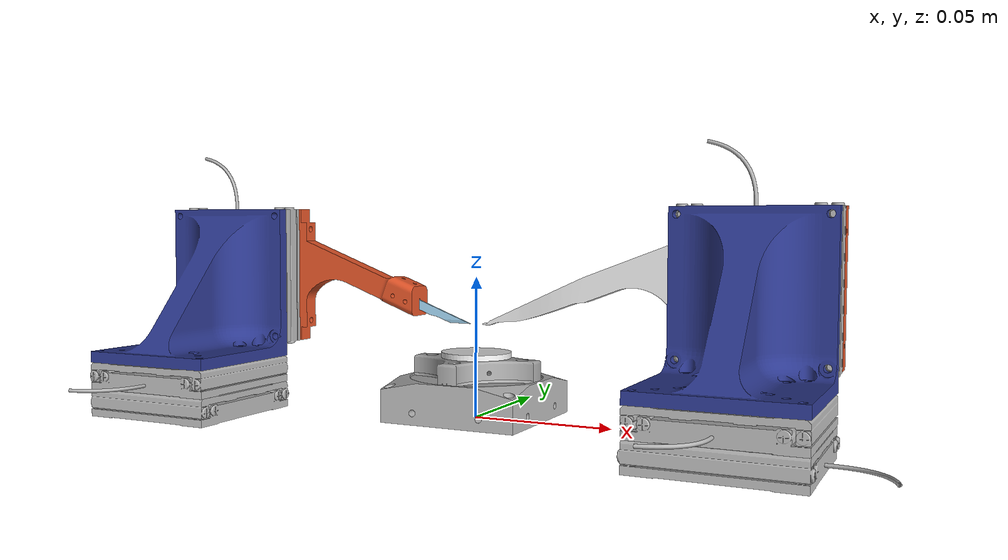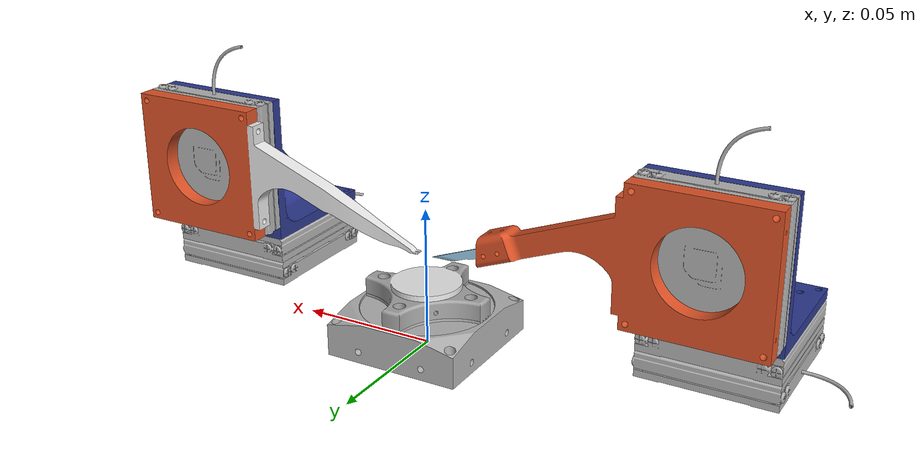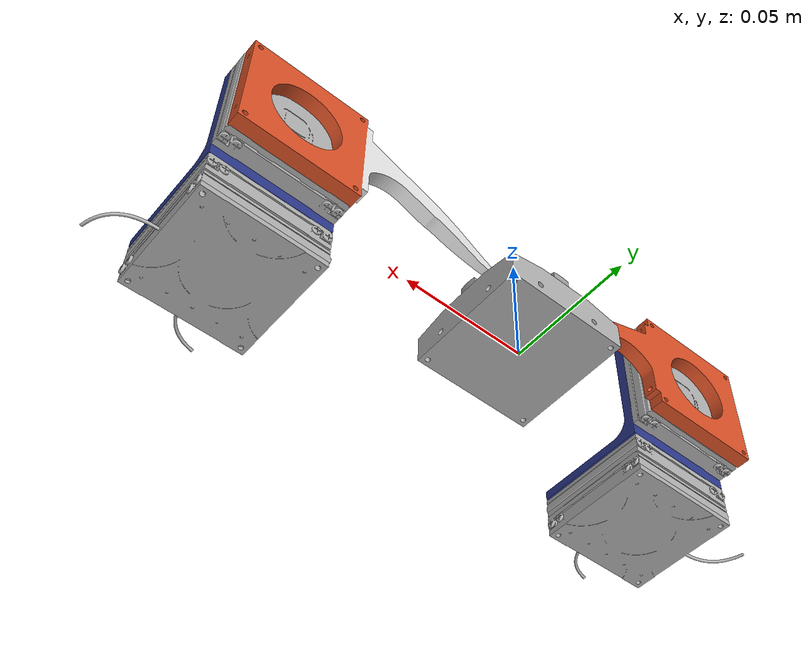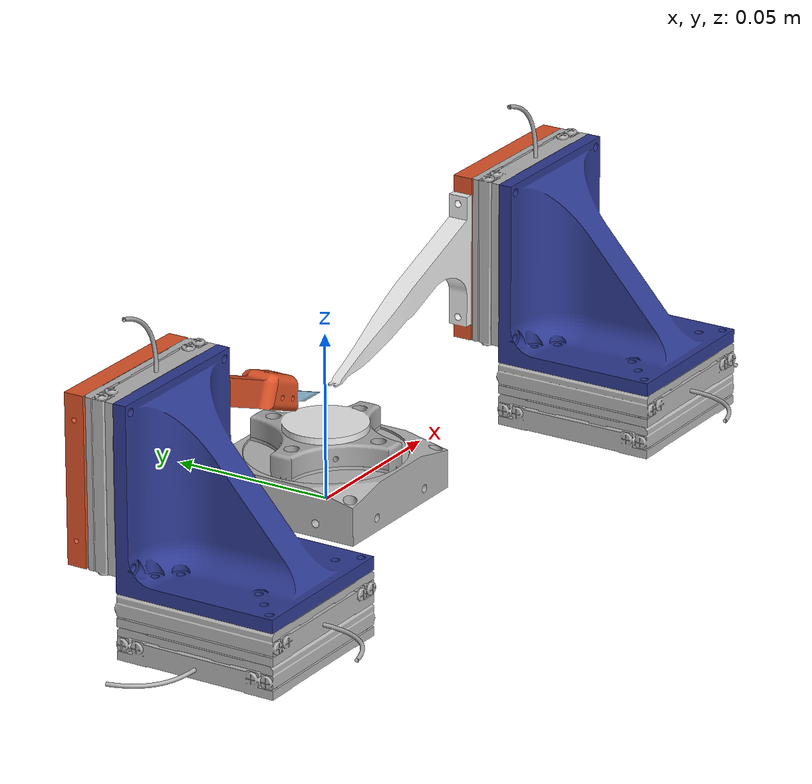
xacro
<?xml version="1.0"?>
<robot xmlns:xacro="http://www.ros.org/wiki/xacro" name="micro_resector">

    <xacro:arg name="hardware_interface" default="PositionJointInterface"/>
    <xacro:arg name="prefix" default="x"/>
    <xacro:arg name="virtual_joints" default="false"/>
    <xacro:arg name="camera" default="false"/>
    <xacro:arg name="hardware" default="false"/>

    <link name="base_link"/>

    <xacro:include filename="$(find micro_resector_description)/urdf/materials.xacro" />
    <xacro:include filename="$(find micro_resector_description)/urdf/tweezer_system.xacro" />
    <xacro:include filename="$(find micro_resector_description)/urdf/scalpel_system.xacro"/>
    <xacro:include filename="$(find micro_resector_description)/urdf/sample_holder_system.xacro"/>
    <xacro:include filename="$(find micro_resector_description)/urdf/tools/microscope_camera.xacro"/>
    <xacro:include filename="$(find micro_resector_description)/urdf/micro_resector.ros2_control.xacro"/>

    <xacro:if value="$(arg virtual_joints)">
        <joint name="tweezer_to_base" type="floating">
            <parent link="base_link"/>
            <child link="tweezer_system_base_link"/>
            <origin xyz="0.098 -0.0375 0.00" rpy="0 0.0 0"/>
        </joint>

        <joint name="scalpel_to_base" type="floating">
            <parent link="base_link"/>
            <child link="scalpel_system_base_link"/>
            <origin xyz="-0.098 -0.0375 0.00" rpy="0.0 0.0 0"/>
        </joint>

        <joint name="sample_holder_to_base" type="floating">
            <parent link="base_link"/>
            <child link="sample_holder_base_link"/>
            <origin xyz="0 0 0.00" rpy="0 0.0 0.0"/>
        </joint>

        <xacro:if value="$(arg camera)">
            <joint name="camera_joint" type="floating">
                <origin xyz="0 0 0.1" rpy="0 ${pi/2} 0"/>
                <parent link="base_link"/>
                <child link="camera_link"/>
            </joint>
        </xacro:if>
    </xacro:if>

    <xacro:unless value="$(arg virtual_joints)">
        <joint name="tweezer_to_base" type="fixed">
            <parent link="base_link"/>
            <child link="tweezer_system_base_link"/>
            <origin xyz="0.098 -0.0375 0.00" rpy="0 0 ${pi}"/>
        </joint>

        <joint name="scalpel_to_base" type="fixed">
            <parent link="base_link"/>
            <child link="scalpel_system_base_link"/>
            <origin xyz="-0.098 -0.0375 0.00" rpy="0.0 0.0 0"/>
        </joint>

        <joint name="sample_holder_to_base" type="fixed">
            <parent link="base_link"/>
            <child link="sample_holder_base_link"/>
            <origin xyz="0 0 0.00" rpy="0 0.0 0.0"/>
        </joint>

        <xacro:if value="$(arg camera)">
            <joint name="camera_joint" type="fixed">
                <origin xyz="0 0 0.1" rpy="0 ${pi/2} 0"/>
                <parent link="base_link"/>
                <child link="camera_link"/>
            </joint>
        </xacro:if>
    </xacro:unless>

    <xacro:tweezer_system hardware_interface="$(arg hardware_interface)" name="tweezer">
    </xacro:tweezer_system>

    <xacro:scalpel_system hardware_interface="$(arg hardware_interface)" name="scalpel">
    </xacro:scalpel_system>

    <xacro:sample_holder hardware_interface="$(arg hardware_interface)">
    </xacro:sample_holder>

    <link name="image_sample_link"/>
    <joint name="image_sample_link_joint" type="fixed">
        <origin xyz="0 0 0.0235" rpy="0 0 0"/>
        <parent link="base_link"/>
        <child link="image_sample_link"/>
    </joint>

    <xacro:if value="$(arg camera)">
        <xacro:microscope_camera type="mono"/>
    </xacro:if>

    <xacro:include filename="$(find micro_resector_description)/urdf/full_setup.gazebo.xacro"/>

    <xacro:micro_resector_control name="MicroResectorPositionHardwareInterface"
                              hardware="$(arg hardware)"/>
</robot>

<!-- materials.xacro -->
<robot name="materials" xmlns:xacro="http://www.ros.org/wiki/xacro" >

  <material name="silver">
    <color rgba="0.700 0.700 0.700 1.000"/>
  </material>

  <material name="black">
    <color rgba="0.0 0.0 0.0 1.0"/>
  </material>

  <material name="blue">
    <color rgba="0.0 0.0 0.8 1.0"/>
  </material>

  <material name="green">
    <color rgba="0.0 0.8 0.0 1.0"/>
  </material>

  <material name="grey">
    <color rgba="0.4 0.4 0.4 1.0"/>
  </material>

  <material name="orange">
    <color rgba="${255/255} ${108/255} ${10/255} 1.0"/>
  </material>

  <material name="brown">
    <color rgba="${222/255} ${207/255} ${195/255} 1.0"/>
  </material>

  <material name="red">
    <color rgba="0.8 0.0 0.0 1.0"/>
  </material>

  <material name="white">
    <color rgba="1.0 1.0 1.0 1.0"/>
  </material>

</robot>

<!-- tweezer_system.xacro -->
<robot xmlns:xacro="http://www.ros.org/wiki/xacro">

    <xacro:include filename="$(find micro_resector_description)/urdf/stage/linear_stage.xacro"/>
    <xacro:include filename="$(find micro_resector_description)/urdf/link/l_bracket.xacro"/>
    <xacro:include filename="$(find micro_resector_description)/urdf/tools/tweezer_reinforced.xacro"/>
    <xacro:include filename="$(find micro_resector_description)/urdf/tools/tweezer_assembly.xacro"/>

    <xacro:macro name="tweezer_system" params="hardware_interface name">

        <link name="${name}_system_base_link"/>

        <joint name="${name}_x_linear_stage_world_joint" type="fixed">
            <parent link="${name}_system_base_link"/>
            <child link="${name}_x_lin_base_link"/>
            <origin xyz="0 0 0" rpy="0 0 0"/>
        </joint>

        <xacro:linear_stage hardware_interface="${hardware_interface}" prefix="${name}_x">
        </xacro:linear_stage>

        <joint name="${name}_y_linear_stage_joint" type="fixed">
            <parent link="${name}_x_lin_stage_link"/>
            <child link="${name}_y_lin_base_link"/>
            <origin xyz="0 0 0" rpy="0 0 ${-pi/2}"/>
        </joint>

        <xacro:linear_stage hardware_interface="${hardware_interface}" prefix="${name}_y">
        </xacro:linear_stage>

        <joint name="${name}_l_bracket_joint" type="fixed">
            <parent link="${name}_y_lin_stage_link"/>
            <child link="${name}_z_bracket_base_link"/>
            <origin xyz="0.0 0.0 0.0" rpy="0.0 0 ${pi/2}"/>
        </joint>

        <xacro:l_bracket prefix="${name}_z">
        </xacro:l_bracket>

        <joint name="${name}_z_linear_stage_joint" type="fixed">
            <parent link="${name}_z_bracket_side_link"/>
            <child link="${name}_z_lin_base_link"/>
            <origin xyz="0.0 0.0 0.00" rpy="0 0 -${pi/2}"/>
        </joint>

        <xacro:linear_stage hardware_interface="${hardware_interface}" prefix="${name}_z">
        </xacro:linear_stage>

        <xacro:tweezer_assembly>
        </xacro:tweezer_assembly>

        <joint name="tweezer_assembly_joint" type="fixed">
            <parent link="${name}_z_lin_stage_link"/>
            <child link="tweezer_tool_holder_link"/>
            <origin xyz="0 0.0001 -0.0004" rpy="${-pi/2} 0 ${pi/2}"/>
        </joint>
    </xacro:macro>

</robot>

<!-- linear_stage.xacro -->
<robot name="linear_stage" xmlns:xacro="http://www.ros.org/wiki/xacro">

<xacro:include filename="$(find micro_resector_description)/urdf/stage/stage.trans" />
<xacro:include filename="$(find micro_resector_description)/urdf/stage/stage.gazebo" />

<xacro:macro name="linear_stage" params="prefix hardware_interface">
  <link name="${prefix}_lin_base_link">
    <inertial>
      <origin rpy="0 0 0" xyz="0 0 0"/>
      <mass value="0.058579061972031825"/>
      <inertia ixx="1.2e-05" ixy="-0.0" ixz="-0.0" iyy="2.4e-05" iyz="0.0" izz="1.2e-05"/>
    </inertial>
    <visual>
      <origin rpy="0 0 0" xyz="0 0 0"/>
      <geometry>
        <mesh filename="package://micro_resector_description/meshes/stage/lin_base_link.dae"/>
      </geometry>
      <material name="silver"/>
    </visual>
    <collision>
      <origin rpy="0 0 0" xyz="0 0 0"/>
      <geometry>
        <mesh filename="package://micro_resector_description/meshes/stage/lin_base_link.stl"/>
      </geometry>
    </collision>
  </link>

  <link name="${prefix}_lin_stage_link">
    <inertial>
      <origin rpy="0 0 0" xyz="0 0 0"/>
      <mass value="0.11339718225370693"/>
      <inertia ixx="2.3e-05" ixy="0.0" ixz="0.0" iyy="4.6e-05" iyz="0.0" izz="2.3e-05"/>
    </inertial>
    <visual>
      <origin rpy="0 0 0" xyz="0 0 0"/>
      <geometry>
        <mesh filename="package://micro_resector_description/meshes/stage/lin_stage_link.dae"/>
      </geometry>
      <material name="silver"/>
    </visual>
    <collision>
      <origin rpy="0 0 0" xyz="0 0 0"/>
      <geometry>
        <mesh filename="package://micro_resector_description/meshes/stage/lin_stage_link.stl"/>
      </geometry>
    </collision>
  </link>

  <joint name="${prefix}_lin_joint" type="prismatic">
    <origin rpy="0 0 0" xyz="0 0 0.00965"/>
    <parent link="${prefix}_lin_base_link"/>
    <child link="${prefix}_lin_stage_link"/>
    <axis xyz="1 0.0 0.0"/>
    <limit effort="100" lower="-0.015" upper="0.015" velocity="0.0045"/>
  </joint>

<!--  These are likely unnecessary in ros2 and should be removed-->
  <xacro:stage_gazebo prefix="${prefix}" type="lin"/>
  <xacro:stage_transmission prefix="${prefix}" hardware_interface="${hardware_interface}" type="lin"/>

</xacro:macro>

</robot>

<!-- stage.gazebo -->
<robot xmlns:xacro="http://www.ros.org/wiki/xacro" >

<xacro:property name="body_color" value="Gazebo/Silver" />

<xacro:macro name="stage_gazebo" params="prefix type">
  <gazebo reference="$(arg prefix)_${type}_base_link">
    <material>${body_color}</material>
    <mu1>0.2</mu1>
    <mu2>0.2</mu2>
    <selfCollide>true</selfCollide>
    <gravity>true</gravity>
  </gazebo>

  <gazebo reference="$(arg prefix)_${type}_stage_link">
    <material>${body_color}</material>
    <mu1>0.2</mu1>
    <mu2>0.2</mu2>
    <selfCollide>true</selfCollide>
  </gazebo>
</xacro:macro>
</robot>

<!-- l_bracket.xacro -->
<robot name="l_bracket" xmlns:xacro="http://www.ros.org/wiki/xacro">

<xacro:macro name="l_bracket" params="prefix">
  <link name="${prefix}_bracket_base_link">
    <inertial>
      <origin rpy="0 0 0" xyz="0.0 0.0075 0.0"/>
      <mass value="0.058579061972031825"/>
      <inertia ixx="1.2e-05" ixy="-0.0" ixz="-0.0" iyy="2.4e-05" iyz="0.0" izz="1.2e-05"/>
    </inertial>
    <visual>
      <origin rpy="0 0 0" xyz="0 0 0"/>
      <geometry>
        <mesh filename="package://micro_resector_description/meshes/link/l_bracket.dae"/>
      </geometry>
    </visual>
    <collision>
      <origin rpy="0 0 0" xyz="0 0 0"/>
      <geometry>
        <mesh filename="package://micro_resector_description/meshes/link/l_bracket.stl"/>
      </geometry>
    </collision>
  </link>

  <link name="${prefix}_bracket_side_link"/>

  <joint name="${prefix}_bracket_joint" type="fixed">
    <origin rpy="${pi/2} 0 0" xyz="0.0 -0.025 0.03"/>
    <parent link="${prefix}_bracket_base_link"/>
    <child link="${prefix}_bracket_side_link"/>
  </joint>
</xacro:macro>

</robot>

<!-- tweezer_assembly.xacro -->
<robot xmlns:xacro="http://www.ros.org/wiki/xacro" name="tweezer_assembly">
    <xacro:macro name="tweezer_assembly">

        <link name="tweezer_tool_holder_link">
            <inertial>
                <origin rpy="0 0 0" xyz="0.0 0.0075 0.0"/>
                <mass value="0.058579061972031825"/>
                <inertia ixx="1.2e-05" ixy="-0.0" ixz="-0.0" iyy="2.4e-05" iyz="0.0" izz="1.2e-05"/>
            </inertial>
            <visual>
                <origin rpy="0 0 0" xyz="0 0 0"/>
                <geometry>
                    <mesh filename="package://micro_resector_description/meshes/tools/tweezer_tool.dae"/>
                </geometry>
            </visual>
            <collision>
                <origin rpy="0 0 0" xyz="0 0 0"/>
                <geometry>
                    <mesh filename="package://micro_resector_description/meshes/tools/tweezer_tool.stl"/>
                </geometry>
            </collision>
        </link>

        <link name="tweezer_prong_centre"/>

        <joint name="tweezer_prong_centre_joint" type="fixed">
            <origin rpy="0 0 0" xyz="0.093850 -0.003 -0.016"/> <!--model->urdf x->-z, y->y, z->-x -->
            <parent link="tweezer_tool_holder_link"/>
            <child link="tweezer_prong_centre"/>
        </joint>

        <link name="tweezer_left_prong_tip"/>

        <joint name="tweezer_left_prong_tip_joint" type="fixed">
            <origin rpy="0 0 0" xyz="0.09450 -0.002075 -0.016"/>
            <parent link="tweezer_tool_holder_link"/>
            <child link="tweezer_left_prong_tip"/>
        </joint>

        <link name="tweezer_right_prong_tip"/>

        <joint name="tweezer_right_prong_tip_joint" type="fixed">
            <origin rpy="0 0 0" xyz="0.09450 -0.003925 -0.016"/>
            <parent link="tweezer_tool_holder_link"/>
            <child link="tweezer_right_prong_tip"/>
        </joint>
    </xacro:macro>
</robot>

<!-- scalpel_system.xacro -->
<robot xmlns:xacro="http://www.ros.org/wiki/xacro">

    <xacro:include filename="$(find micro_resector_description)/urdf/stage/linear_stage.xacro"/>
    <xacro:include filename="$(find micro_resector_description)/urdf/link/l_bracket.xacro"/>
    <xacro:include filename="$(find micro_resector_description)/urdf/tools/scalpel.xacro"/>
    <xacro:include filename="$(find micro_resector_description)/urdf/tools/scalpel_assembly.xacro"/>
    <xacro:include filename="$(find micro_resector_description)/urdf/tools/tool_holder.xacro"/>

    <xacro:macro name="scalpel_system" params="hardware_interface name">

        <link name="${name}_system_base_link"/>

        <joint name="${name}_x_linear_stage_world_joint" type="fixed">
            <parent link="${name}_system_base_link"/>
            <child link="${name}_x_lin_base_link"/>
            <origin xyz="0 0 0" rpy="0 0 0"/>
        </joint>

        <xacro:linear_stage hardware_interface="${hardware_interface}" prefix="${name}_x">
        </xacro:linear_stage>

        <joint name="${name}_y_linear_stage_joint" type="fixed">
            <parent link="${name}_x_lin_stage_link"/>
            <child link="${name}_y_lin_base_link"/>
            <origin xyz="0 0 0" rpy="0 0 ${pi/2}"/>
        </joint>

        <xacro:linear_stage hardware_interface="${hardware_interface}" prefix="${name}_y">
        </xacro:linear_stage>

        <joint name="${name}_l_bracket_joint" type="fixed">
            <parent link="${name}_y_lin_stage_link"/>
            <child link="${name}_z_bracket_base_link"/>
            <origin xyz="0.0 0.0 0.00" rpy="0.0 0 ${pi/2}"/>
        </joint>

        <xacro:l_bracket prefix="${name}_z">
        </xacro:l_bracket>

        <joint name="${name}_z_linear_stage_joint" type="fixed">
            <parent link="${name}_z_bracket_side_link"/>
            <child link="${name}_z_lin_base_link"/>
            <origin xyz="0.0 0.0 0.00" rpy="0 0 -${pi/2}"/>
        </joint>

        <xacro:linear_stage hardware_interface="${hardware_interface}" prefix="${name}_z">
        </xacro:linear_stage>

        <xacro:scalpel_assembly>
        </xacro:scalpel_assembly>

        <joint name="scalpel_assembly_joint" type="fixed">
            <parent link="${name}_z_lin_stage_link"/>
            <child link="scalpel_tool_holder_link"/>
            <origin xyz="0 0 0" rpy="${-pi/2} 0 ${pi/2}"/>
        </joint>

    </xacro:macro>

</robot>

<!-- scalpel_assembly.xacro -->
<robot xmlns:xacro="http://www.ros.org/wiki/xacro" name="scalpel_assembly">
    <xacro:macro name="scalpel_assembly">

        <link name="scalpel_tool_holder_link">
            <inertial>
                <origin rpy="0 0 0" xyz="0.0 0.0075 0.0"/>
                <mass value="0.058579061972031825"/>
                <inertia ixx="1.2e-05" ixy="-0.0" ixz="-0.0" iyy="2.4e-05" iyz="0.0" izz="1.2e-05"/>
            </inertial>
            <visual>
                <origin rpy="0 0 0" xyz="0 0 0"/>
                <geometry>
                    <mesh filename="package://micro_resector_description/meshes/tools/scalpel_tool.dae"/>
                </geometry>
            </visual>
            <collision>
                <origin rpy="0 0 0" xyz="0 0 0"/>
                <geometry>
                    <mesh filename="package://micro_resector_description/meshes/tools/scalpel_tool.stl"/>
                </geometry>
            </collision>
        </link>

        <joint name="scalpel_blade_tip_joint" type="fixed">
            <parent link="scalpel_tool_holder_link"/>
            <child link="scalpel_blade_tip"/>
            <origin xyz="-0.095571 -0.003 -0.016019" rpy="0 0 ${pi}"/>
        </joint>

        <link name="scalpel_blade_tip"/>

        <joint name="scalpel_blade_end_joint" type="fixed">
            <parent link="scalpel_tool_holder_link"/>
            <child link="scalpel_blade_end"/>
            <origin xyz="-0.087571 -0.003 -0.015948" rpy="0 0 ${pi}"/>
        </joint>

        <link name="scalpel_blade_end"/>
    </xacro:macro>
</robot>

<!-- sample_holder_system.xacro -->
<robot xmlns:xacro="http://www.ros.org/wiki/xacro" name="sample_holder">

    <xacro:include filename="$(find micro_resector_description)/urdf/stage/rotation_stage.xacro"/>

    <xacro:macro name="sample_holder" params="hardware_interface">
        <xacro:arg name="hardware_interface" default="PositionJointInterface"/>
        <xacro:arg name="prefix" default="centre"/>
        <link name="sample_holder_base_link"/>

        <joint name="rotation_stage_to_base" type="fixed">
            <parent link="sample_holder_base_link"/>
            <child link="centre_rot_base_link"/>
            <origin xyz="0 0 0.00" rpy="${pi/2} 0.0 0.0"/>
        </joint>

        <xacro:rotation_stage hardware_interface="$(arg hardware_interface)" prefix="centre">
        </xacro:rotation_stage>

        <joint name="rotation_stage_to_sample" type="fixed">
            <parent link="centre_rot_stage_link"/>
            <child link="sample_link"/>
            <origin xyz="0 0.0085 0.00" rpy="-${pi/2} 0 0.0"/>
        </joint>

        <link name="sample_link">
            <visual>
                <origin rpy="0 0 ${pi/4}" xyz="0 0 -0.0101"/>
                <geometry>
                    <mesh filename="package://micro_resector_description/meshes/tools/rotation_base_mount.dae"/>
                </geometry>
            </visual>
                <collision>
                <origin rpy="0 0 ${pi/4}" xyz="0 0 -0.0101"/>
                <geometry>
                     <mesh filename="package://micro_resector_description/meshes/tools/rotation_base_mount.stl"/>
                </geometry>
            </collision>
            <inertial>
                <mass value="0.1" />
                <inertia ixx="0.03" iyy="0.03" izz="0.03" ixy="0.0" ixz="0.0" iyz="0.0" />
            </inertial>
        </link>

    </xacro:macro>

</robot>

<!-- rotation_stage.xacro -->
<robot name="rotation_stage" xmlns:xacro="http://www.ros.org/wiki/xacro">

<xacro:include filename="$(find micro_resector_description)/urdf/stage/stage.trans" />
<xacro:include filename="$(find micro_resector_description)/urdf/stage/stage.gazebo" />

<xacro:macro name="rotation_stage" params="prefix hardware_interface">
  <link name="${prefix}_rot_base_link">
    <inertial>
      <origin rpy="0 0 0" xyz="0.0 0.0075 0.0"/>
      <mass value="0.058579061972031825"/>
      <inertia ixx="1.2e-05" ixy="-0.0" ixz="-0.0" iyy="2.4e-05" iyz="0.0" izz="1.2e-05"/>
    </inertial>
    <visual>
      <origin rpy="0 0 0" xyz="0 0.01 0"/>
      <geometry>
        <mesh filename="package://micro_resector_description/meshes/stage/rot_base_link.stl" scale="0.001 0.001 0.001"/>
      </geometry>
      <material name="silver"/>
    </visual>
    <collision>
      <origin rpy="0 0 0" xyz="0 0.01 0"/>
      <geometry>
        <mesh filename="package://micro_resector_description/meshes/stage/rot_base_link.stl" scale="0.001 0.001 0.001"/>
      </geometry>
    </collision>
  </link>

  <link name="${prefix}_rot_stage_link">
    <inertial>
      <origin rpy="0 0 0" xyz="0.0 -0.00028 0.0"/>
      <mass value="0.11339718225370693"/>
      <inertia ixx="2.3e-05" ixy="0.0" ixz="0.0" iyy="4.6e-05" iyz="0.0" izz="2.3e-05"/>
    </inertial>
    <visual>
      <origin rpy="0 ${pi/4} 0" xyz="0.0 -0.005 -0.0"/>
      <geometry>
        <mesh filename="package://micro_resector_description/meshes/stage/rot_stage_link.stl" scale="0.001 0.001 0.001"/>
      </geometry>
      <material name="silver"/>
    </visual>
    <collision>
      <origin rpy="0 ${pi/4} 0" xyz="0.0 -0.005 -0.0"/>
      <geometry>
        <mesh filename="package://micro_resector_description/meshes/stage/rot_stage_link.stl" scale="0.001 0.001 0.001"/>
      </geometry>
    </collision>
  </link>

  <joint name="${prefix}_rot_joint" type="continuous">
    <origin rpy="0 0 0" xyz="0.0 0.015 0.0"/>
    <parent link="${prefix}_rot_base_link"/>
    <child link="${prefix}_rot_stage_link"/>
    <axis xyz="0 -1 0.0"/>
    <limit effort="100" velocity="${(pi/180) * 15}"/>
  </joint>

  <xacro:stage_gazebo prefix="${prefix}" type="rot"/>
  <xacro:stage_transmission prefix="${prefix}" hardware_interface="${hardware_interface}" type="rot"/>

</xacro:macro>

</robot>
